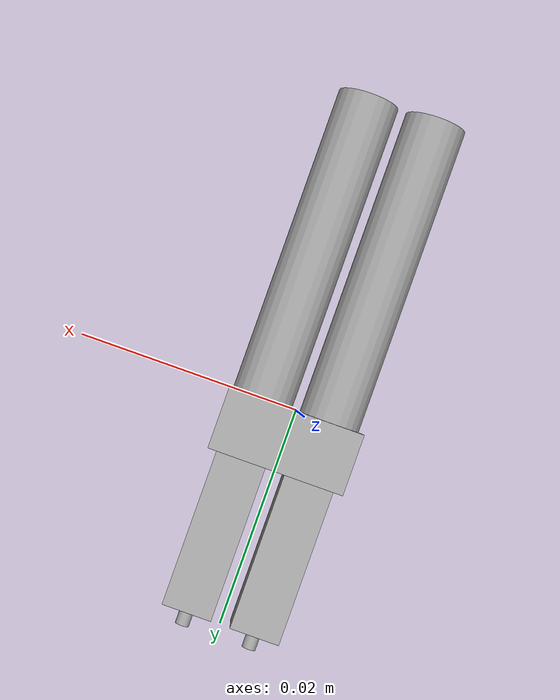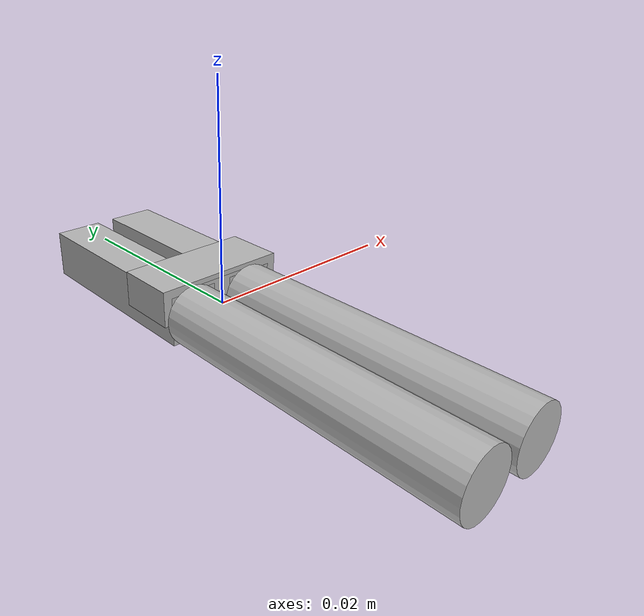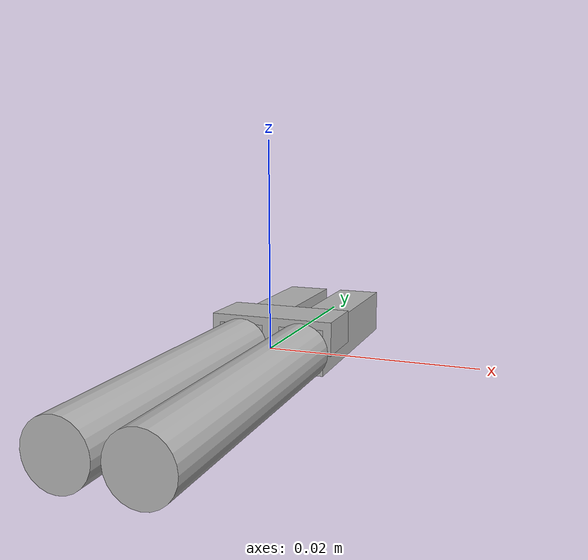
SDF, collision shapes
<?xml version="1.0" ?>
<sdf version="1.9">
  <model name="SFP Plug">
    <link name="sfp_plug_link">
      <inertial auto="true">
        <mass>0.01</mass>
      </inertial>
      <visual name="sfp_plug_visual">
        <geometry>
          <mesh>
            <uri>sfp_plug_visual.glb</uri>
          </mesh>
        </geometry>
      </visual>
      <collision name="cube_collider_box">
        <pose>0.003125 0.00985 0.0 -1.570796 1.570796 0.0</pose>
        <geometry>
          <box>
            <size>0.0045 0.0045 0.0197</size>
          </box>
        </geometry>
      </collision>
      <collision name="cube_collider_box.001">
        <pose>-0.003125 0.00985 -0.0 -1.570796 1.570796 0.0</pose>
        <geometry>
          <box>
            <size>0.0045 0.0045 0.0197</size>
          </box>
        </geometry>
      </collision>
      <collision name="cube001_collider_box">
        <pose>-0.0 0.002778 0.001434 -0.0 3.141593 -0.0</pose>
        <geometry>
          <box>
            <size>0.012353 0.00555 0.00325</size>
          </box>
        </geometry>
      </collision>
      <collision name="cube001_collider_box.001">
        <pose>-0.0 0.002778 -0.000323 -0.0 3.141593 -0.0</pose>
        <geometry>
          <box>
            <size>0.00665 0.00555 0.005852</size>
          </box>
        </geometry>
      </collision>
      <collision name="cylinder001_collider_cylinder">
        <pose>0.003125 0.0197 0.0 1.570796 0.0 0.0</pose>
        <geometry>
          <cylinder>
            <radius>0.000625</radius>
            <length>0.003004</length>
          </cylinder>
        </geometry>
      </collision>
      <collision name="cylinder_collider_cylinder">
        <pose>-0.003125 0.0197 0.0 1.570796 0.0 0.0</pose>
        <geometry>
          <cylinder>
            <radius>0.000625</radius>
            <length>0.003004</length>
          </cylinder>
        </geometry>
      </collision>
      <collision name="cylinder003_collider_cylinder">
        <pose>0.003125 -0.014001 -0.0 1.570796 0.0 0.0</pose>
        <geometry>
          <cylinder>
            <radius>0.00275</radius>
            <length>0.028</length>
          </cylinder>
        </geometry>
      </collision>
      <collision name="cylinder002_collider_cylinder">
        <pose>-0.003125 -0.014001 -0.0 1.570796 0.0 0.0</pose>
        <geometry>
          <cylinder>
            <radius>0.00275</radius>
            <length>0.028</length>
          </cylinder>
        </geometry>
      </collision>
    </link>
  </model>
</sdf>
